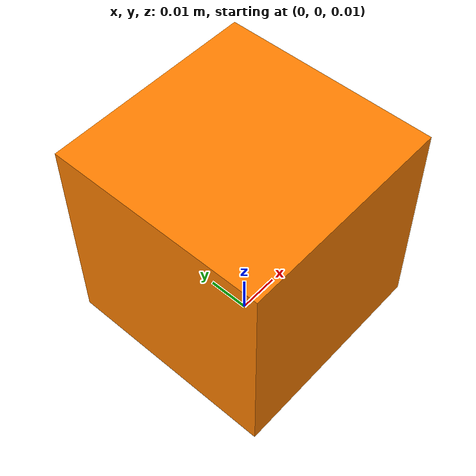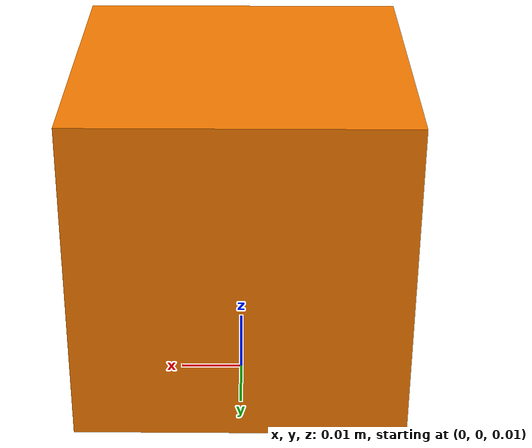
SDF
<sdf version="1.7">
    <model name="box">
        <pose>0 0 0.04 0 0 0</pose>
        <link name="box_link">
	    <inertial>
	      <mass>0.03373</mass>
	      <pose>0 0 0 0 0 0</pose>
	      <inertia>
		<ixx>1.40541667e-05</ixx>
		<iyy>1.40541667e-05</iyy>
		<izz>1.40541667e-05</izz>
	      </inertia>
	    </inertial>
            <!-- Box Visual -->
            <visual name="visual_box">
	      <geometry><box><size>0.05 0.05 0.05</size></box></geometry>
	      <material><diffuse>1 0.5 0 1</diffuse></material>
            </visual>
            <!-- Box Collision -->
            <collision name="collision_box">
	      <geometry><box><size>0.05 0.05 0.05</size></box></geometry>
	      <drake:proximity_properties>
		<drake:compliant_hydroelastic/>
		<drake:hydroelastic_modulus>30e6</drake:hydroelastic_modulus>
		<drake:mu_dynamic>0.3</drake:mu_dynamic>
		<drake:hunt_crossley_dissipation>100.2</drake:hunt_crossley_dissipation>
	      </drake:proximity_properties>
            </collision>
        </link>
    </model>
</sdf>

            <!-- Four Corner Spheres -->
            <collision name="collision_sphere_1">
                <pose>-0.04 -0.04 -0.04 0 0 0</pose>
                <geometry>
                    <sphere>
                        <radius>0.001</radius>
                    </sphere>
                </geometry>
                <drake:proximity_properties>
                    <drake:rigid_hydroelastic/>
                    <drake:hydroelastic_modulus>1e7</drake:hydroelastic_modulus>
                    <drake:mu_dynamic>0.4</drake:mu_dynamic>
                    <drake:hunt_crossley_dissipation>15.25</drake:hunt_crossley_dissipation>
                    <drake:mesh_resolution_hint>0.005</drake:mesh_resolution_hint>
                </drake:proximity_properties>
            </collision>

            <collision name="collision_sphere_2">
                <pose>0.04 -0.04 -0.04 0 0 0</pose>
                <geometry>
                    <sphere>
                        <radius>0.001</radius>
                    </sphere>
                </geometry>
                <drake:proximity_properties>
                    <drake:rigid_hydroelastic/>
                    <drake:hydroelastic_modulus>1e7</drake:hydroelastic_modulus>
                    <drake:mu_dynamic>0.4</drake:mu_dynamic>
                    <drake:hunt_crossley_dissipation>15.25</drake:hunt_crossley_dissipation>
                    <drake:mesh_resolution_hint>0.005</drake:mesh_resolution_hint>
                </drake:proximity_properties>
            </collision>

            <collision name="collision_sphere_3">
                <pose>-0.04 0.04 -0.04 0 0 0</pose>
                <geometry>
                    <sphere>
                        <radius>0.001</radius>
                    </sphere>
                </geometry>
                <drake:proximity_properties>
                    <drake:rigid_hydroelastic/>
                    <drake:hydroelastic_modulus>1e7</drake:hydroelastic_modulus>
                    <drake:mu_dynamic>0.4</drake:mu_dynamic>
                    <drake:hunt_crossley_dissipation>15.25</drake:hunt_crossley_dissipation>
                    <drake:mesh_resolution_hint>0.005</drake:mesh_resolution_hint>
                </drake:proximity_properties>
            </collision>

            <collision name="collision_sphere_4">
                <pose>0.04 0.04 -0.04 0 0 0</pose>
                <geometry>
                    <sphere>
                        <radius>0.001</radius>
                    </sphere>
                </geometry>
                <drake:proximity_properties>
                    <drake:rigid_hydroelastic/>
                    <drake:hydroelastic_modulus>1e7</drake:hydroelastic_modulus>
                    <drake:mu_dynamic>0.4</drake:mu_dynamic>
                    <drake:hunt_crossley_dissipation>15.25</drake:hunt_crossley_dissipation>
                    <drake:mesh_resolution_hint>0.005</drake:mesh_resolution_hint>
                </drake:proximity_properties>
            </collision>

            <!-- Four Top Corner Spheres -->
		<collision name="collision_sphere_5">
		    <pose>-0.04 -0.04 0.04 0 0 0</pose>
		    <geometry>
			<sphere>
			    <radius>0.005</radius>
			</sphere>
		    </geometry>
	        <drake:proximity_properties>
	            <drake:compliant_hydroelastic/>
	            <drake:hydroelastic_modulus>1e7</drake:hydroelastic_modulus>
	            <drake:mu_dynamic>0.4</drake:mu_dynamic>
	            <drake:hunt_crossley_dissipation>15.25</drake:hunt_crossley_dissipation>
	            <drake:mesh_resolution_hint>0.01</drake:mesh_resolution_hint>
	        </drake:proximity_properties>
	    </collision>

		<collision name="collision_sphere_6">
		    <pose>0.04 -0.04 0.04 0 0 0</pose>
		    <geometry>
			<sphere>
			    <radius>0.005</radius>
			</sphere>
		    </geometry>
                <drake:proximity_properties>
                    <drake:compliant_hydroelastic/>
                    <drake:hydroelastic_modulus>1e7</drake:hydroelastic_modulus>
                    <drake:mu_dynamic>0.4</drake:mu_dynamic>
                    <drake:hunt_crossley_dissipation>15.25</drake:hunt_crossley_dissipation>
                    <drake:mesh_resolution_hint>0.01</drake:mesh_resolution_hint>
                </drake:proximity_properties>
            </collision>

		<collision name="collision_sphere_7">
		    <pose>-0.04 0.04 0.04 0 0 0</pose>
		    <geometry>
			<sphere>
			    <radius>0.005</radius>
			</sphere>
		    </geometry>
                <drake:proximity_properties>
                    <drake:compliant_hydroelastic/>
                    <drake:hydroelastic_modulus>1e7</drake:hydroelastic_modulus>
                    <drake:mu_dynamic>0.4</drake:mu_dynamic>
                    <drake:hunt_crossley_dissipation>15.25</drake:hunt_crossley_dissipation>
                    <drake:mesh_resolution_hint>0.01</drake:mesh_resolution_hint>
                </drake:proximity_properties>
            </collision>

		<collision name="collision_sphere_8">
		    <pose>0.04 0.04 0.04 0 0 0</pose>
		    <geometry>
			<sphere>
			    <radius>0.005</radius>
			</sphere>
		    </geometry>
                <drake:proximity_properties>
                    <drake:compliant_hydroelastic/>
                    <drake:hydroelastic_modulus>1e7</drake:hydroelastic_modulus>
                    <drake:mu_dynamic>0.4</drake:mu_dynamic>
                    <drake:hunt_crossley_dissipation>15.25</drake:hunt_crossley_dissipation>
                    <drake:mesh_resolution_hint>0.01</drake:mesh_resolution_hint>
                </drake:proximity_properties>
            </collision>
<drake:mesh_resolution_hint>5.05</drake:mesh_resolution_hint>
